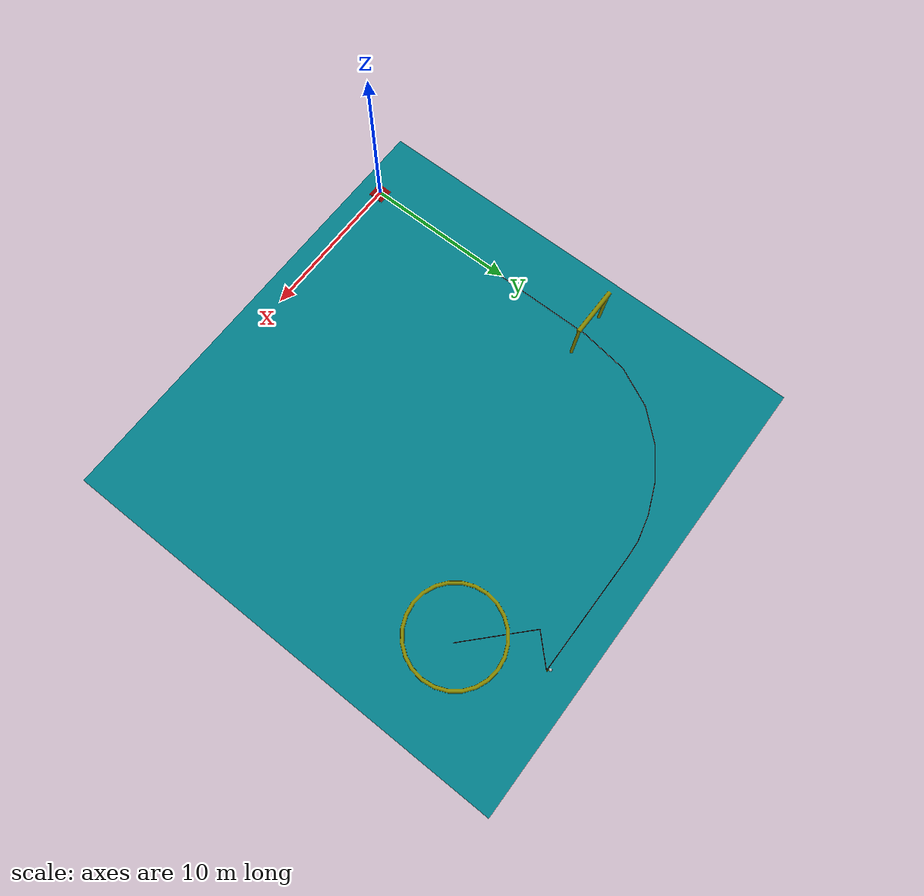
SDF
<?xml version="1.0"?>
<sdf version="1.4">
  <model name="water_plane">
    <static>true</static>
    <link name="link">
      <visual name="visual">
        <cast_shadows>false</cast_shadows>
        <geometry>
          <mesh>
            <uri>model://water_scene/meshes/singapore_scena.dae</uri>
          </mesh>
        </geometry>
      </visual>
    </link>
  </model>
</sdf>
